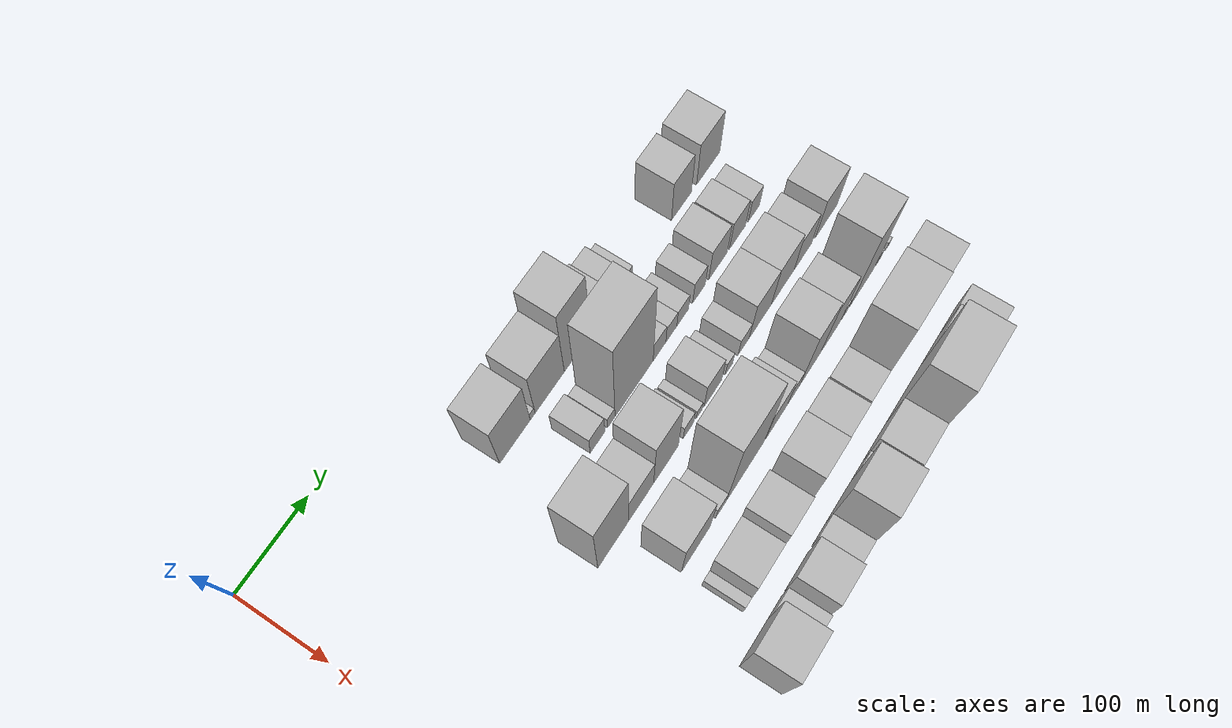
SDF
<sdf version="1.6">
 <world name="default">
  <model name="building_29">
   <static>1</static>
   <pose>100.0000 234.9728 0 0.000000 0.000000 0.000000</pose>
   <link name="link">
    <pose>0 0 43.50 0 0 0</pose>
    <collision name="collision"><geometry><box><size>40.0000 46.1821 87.0000</size></box></geometry></collision>
    <visual name="visual">
     <cast_shadows>0</cast_shadows>
     <geometry><box><size>40.0000 46.1821 87.0000</size></box></geometry>
     <material>
      <script>
       <uri>model://HANNAS_wall/materials/scripts</uri>
       <uri>model://HANNAS_wall/materials/textures</uri>
       <name>vrc/HANNAS_wall</name>
      </script>
     </material>
    </visual>
   </link>
  </model>
  <model name="building_30">
   <static>1</static>
   <pose>100.0000 261.7786 0 0.000000 0.000000 0.000000</pose>
   <link name="link">
    <pose>0 0 7.50 0 0 0</pose>
    <collision name="collision"><geometry><box><size>40.0000 7.4294 15.0000</size></box></geometry></collision>
    <visual name="visual">
     <cast_shadows>0</cast_shadows>
     <geometry><box><size>40.0000 7.4294 15.0000</size></box></geometry>
     <material>
      <script>
       <uri>model://HANNAS_wall/materials/scripts</uri>
       <uri>model://HANNAS_wall/materials/textures</uri>
       <name>vrc/HANNAS_wall</name>
      </script>
     </material>
    </visual>
   </link>
  </model>
  <model name="building_31">
   <static>1</static>
   <pose>100.0000 288.1224 0 0.000000 0.000000 0.000000</pose>
   <link name="link">
    <pose>0 0 45.00 0 0 0</pose>
    <collision name="collision"><geometry><box><size>40.0000 45.2583 90.0000</size></box></geometry></collision>
    <visual name="visual">
     <cast_shadows>0</cast_shadows>
     <geometry><box><size>40.0000 45.2583 90.0000</size></box></geometry>
     <material>
      <script>
       <uri>model://HANNAS_wall/materials/scripts</uri>
       <uri>model://HANNAS_wall/materials/textures</uri>
       <name>vrc/HANNAS_wall</name>
      </script>
     </material>
    </visual>
   </link>
  </model>
  <model name="building_32">
   <static>1</static>
   <pose>100.0000 331.3956 0 0.000000 0.000000 0.000000</pose>
   <link name="link">
    <pose>0 0 64.50 0 0 0</pose>
    <collision name="collision"><geometry><box><size>40.0000 41.2880 129.0000</size></box></geometry></collision>
    <visual name="visual">
     <cast_shadows>0</cast_shadows>
     <geometry><box><size>40.0000 41.2880 129.0000</size></box></geometry>
     <material>
      <script>
       <uri>model://HANNAS_wall/materials/scripts</uri>
       <uri>model://HANNAS_wall/materials/textures</uri>
       <name>vrc/HANNAS_wall</name>
      </script>
     </material>
    </visual>
   </link>
  </model>
  <model name="building_33">
   <static>1</static>
   <pose>100.0000 366.7102 0 0.000000 0.000000 0.000000</pose>
   <link name="link">
    <pose>0 0 25.50 0 0 0</pose>
    <collision name="collision"><geometry><box><size>40.0000 29.3411 51.0000</size></box></geometry></collision>
    <visual name="visual">
     <cast_shadows>0</cast_shadows>
     <geometry><box><size>40.0000 29.3411 51.0000</size></box></geometry>
     <material>
      <script>
       <uri>model://HANNAS_wall/materials/scripts</uri>
       <uri>model://HANNAS_wall/materials/textures</uri>
       <name>vrc/HANNAS_wall</name>
      </script>
     </material>
    </visual>
   </link>
  </model>
  <model name="building_34">
   <static>1</static>
   <pose>100.0000 393.6811 0 0.000000 0.000000 0.000000</pose>
   <link name="link">
    <pose>0 0 21.00 0 0 0</pose>
    <collision name="collision"><geometry><box><size>40.0000 24.6008 42.0000</size></box></geometry></collision>
    <visual name="visual">
     <cast_shadows>0</cast_shadows>
     <geometry><box><size>40.0000 24.6008 42.0000</size></box></geometry>
     <material>
      <script>
       <uri>model://HANNAS_wall/materials/scripts</uri>
       <uri>model://HANNAS_wall/materials/textures</uri>
       <name>vrc/HANNAS_wall</name>
      </script>
     </material>
    </visual>
   </link>
  </model>
  <model name="building_35">
   <static>1</static>
   <pose>100.0000 416.5657 0 0.000000 0.000000 0.000000</pose>
   <link name="link">
    <pose>0 0 10.50 0 0 0</pose>
    <collision name="collision"><geometry><box><size>40.0000 9.1682 21.0000</size></box></geometry></collision>
    <visual name="visual">
     <cast_shadows>0</cast_shadows>
     <geometry><box><size>40.0000 9.1682 21.0000</size></box></geometry>
     <material>
      <script>
       <uri>model://HANNAS_wall/materials/scripts</uri>
       <uri>model://HANNAS_wall/materials/textures</uri>
       <name>vrc/HANNAS_wall</name>
      </script>
     </material>
    </visual>
   </link>
  </model>
  <model name="building_36">
   <static>1</static>
   <pose>100.0000 503.9159 0 0.000000 0.000000 0.000000</pose>
   <link name="link">
    <pose>0 0 34.50 0 0 0</pose>
    <collision name="collision"><geometry><box><size>40.0000 34.5107 69.0000</size></box></geometry></collision>
    <visual name="visual">
     <cast_shadows>0</cast_shadows>
     <geometry><box><size>40.0000 34.5107 69.0000</size></box></geometry>
     <material>
      <script>
       <uri>model://HANNAS_wall/materials/scripts</uri>
       <uri>model://HANNAS_wall/materials/textures</uri>
       <name>vrc/HANNAS_wall</name>
      </script>
     </material>
    </visual>
   </link>
  </model>
  <model name="building_37">
   <static>1</static>
   <pose>100.0000 550.7534 0 0.000000 0.000000 0.000000</pose>
   <link name="link">
    <pose>0 0 36.00 0 0 0</pose>
    <collision name="collision"><geometry><box><size>40.0000 41.1644 72.0000</size></box></geometry></collision>
    <visual name="visual">
     <cast_shadows>0</cast_shadows>
     <geometry><box><size>40.0000 41.1644 72.0000</size></box></geometry>
     <material>
      <script>
       <uri>model://HANNAS_wall/materials/scripts</uri>
       <uri>model://HANNAS_wall/materials/textures</uri>
       <name>vrc/HANNAS_wall</name>
      </script>
     </material>
    </visual>
   </link>
  </model>
  <model name="building_73">
   <static>1</static>
   <pose>160.0000 273.0921 0 0.000000 0.000000 0.000000</pose>
   <link name="link">
    <pose>0 0 19.50 0 0 0</pose>
    <collision name="collision"><geometry><box><size>40.0000 22.8986 39.0000</size></box></geometry></collision>
    <visual name="visual">
     <cast_shadows>0</cast_shadows>
     <geometry><box><size>40.0000 22.8986 39.0000</size></box></geometry>
     <material>
      <script>
       <uri>model://HANNAS_wall/materials/scripts</uri>
       <uri>model://HANNAS_wall/materials/textures</uri>
       <name>vrc/HANNAS_wall</name>
      </script>
     </material>
    </visual>
   </link>
  </model>
  <model name="building_74">
   <static>1</static>
   <pose>160.0000 294.5092 0 0.000000 0.000000 0.000000</pose>
   <link name="link">
    <pose>0 0 12.00 0 0 0</pose>
    <collision name="collision"><geometry><box><size>40.0000 11.9355 24.0000</size></box></geometry></collision>
    <visual name="visual">
     <cast_shadows>0</cast_shadows>
     <geometry><box><size>40.0000 11.9355 24.0000</size></box></geometry>
     <material>
      <script>
       <uri>model://HANNAS_wall/materials/scripts</uri>
       <uri>model://HANNAS_wall/materials/textures</uri>
       <name>vrc/HANNAS_wall</name>
      </script>
     </material>
    </visual>
   </link>
  </model>
  <model name="building_75">
   <static>1</static>
   <pose>160.0000 331.0993 0 0.000000 0.000000 0.000000</pose>
   <link name="link">
    <pose>0 0 82.50 0 0 0</pose>
    <collision name="collision"><geometry><box><size>40.0000 61.2446 165.0000</size></box></geometry></collision>
    <visual name="visual">
     <cast_shadows>0</cast_shadows>
     <geometry><box><size>40.0000 61.2446 165.0000</size></box></geometry>
     <material>
      <script>
       <uri>model://HANNAS_wall/materials/scripts</uri>
       <uri>model://HANNAS_wall/materials/textures</uri>
       <name>vrc/HANNAS_wall</name>
      </script>
     </material>
    </visual>
   </link>
  </model>
  <model name="building_76">
   <static>1</static>
   <pose>160.0000 372.1858 0 0.000000 0.000000 0.000000</pose>
   <link name="link">
    <pose>0 0 19.50 0 0 0</pose>
    <collision name="collision"><geometry><box><size>40.0000 20.9284 39.0000</size></box></geometry></collision>
    <visual name="visual">
     <cast_shadows>0</cast_shadows>
     <geometry><box><size>40.0000 20.9284 39.0000</size></box></geometry>
     <material>
      <script>
       <uri>model://HANNAS_wall/materials/scripts</uri>
       <uri>model://HANNAS_wall/materials/textures</uri>
       <name>vrc/HANNAS_wall</name>
      </script>
     </material>
    </visual>
   </link>
  </model>
  <model name="building_77">
   <static>1</static>
   <pose>160.0000 391.7372 0 0.000000 0.000000 0.000000</pose>
   <link name="link">
    <pose>0 0 16.50 0 0 0</pose>
    <collision name="collision"><geometry><box><size>40.0000 18.1744 33.0000</size></box></geometry></collision>
    <visual name="visual">
     <cast_shadows>0</cast_shadows>
     <geometry><box><size>40.0000 18.1744 33.0000</size></box></geometry>
     <material>
      <script>
       <uri>model://HANNAS_wall/materials/scripts</uri>
       <uri>model://HANNAS_wall/materials/textures</uri>
       <name>vrc/HANNAS_wall</name>
      </script>
     </material>
    </visual>
   </link>
  </model>
  <model name="building_78">
   <static>1</static>
   <pose>160.0000 410.5744 0 0.000000 0.000000 0.000000</pose>
   <link name="link">
    <pose>0 0 16.50 0 0 0</pose>
    <collision name="collision"><geometry><box><size>40.0000 19.5000 33.0000</size></box></geometry></collision>
    <visual name="visual">
     <cast_shadows>0</cast_shadows>
     <geometry><box><size>40.0000 19.5000 33.0000</size></box></geometry>
     <material>
      <script>
       <uri>model://HANNAS_wall/materials/scripts</uri>
       <uri>model://HANNAS_wall/materials/textures</uri>
       <name>vrc/HANNAS_wall</name>
      </script>
     </material>
    </visual>
   </link>
  </model>
  <model name="building_79">
   <static>1</static>
   <pose>160.0000 438.0609 0 0.000000 0.000000 0.000000</pose>
   <link name="link">
    <pose>0 0 21.00 0 0 0</pose>
    <collision name="collision"><geometry><box><size>40.0000 21.4730 42.0000</size></box></geometry></collision>
    <visual name="visual">
     <cast_shadows>0</cast_shadows>
     <geometry><box><size>40.0000 21.4730 42.0000</size></box></geometry>
     <material>
      <script>
       <uri>model://HANNAS_wall/materials/scripts</uri>
       <uri>model://HANNAS_wall/materials/textures</uri>
       <name>vrc/HANNAS_wall</name>
      </script>
     </material>
    </visual>
   </link>
  </model>
  <model name="building_80">
   <static>1</static>
   <pose>160.0000 470.7768 0 0.000000 0.000000 0.000000</pose>
   <link name="link">
    <pose>0 0 28.50 0 0 0</pose>
    <collision name="collision"><geometry><box><size>40.0000 31.9588 57.0000</size></box></geometry></collision>
    <visual name="visual">
     <cast_shadows>0</cast_shadows>
     <geometry><box><size>40.0000 31.9588 57.0000</size></box></geometry>
     <material>
      <script>
       <uri>model://HANNAS_wall/materials/scripts</uri>
       <uri>model://HANNAS_wall/materials/textures</uri>
       <name>vrc/HANNAS_wall</name>
      </script>
     </material>
    </visual>
   </link>
  </model>
  <model name="building_81">
   <static>1</static>
   <pose>160.0000 504.7751 0 0.000000 0.000000 0.000000</pose>
   <link name="link">
    <pose>0 0 25.50 0 0 0</pose>
    <collision name="collision"><geometry><box><size>40.0000 28.0379 51.0000</size></box></geometry></collision>
    <visual name="visual">
     <cast_shadows>0</cast_shadows>
     <geometry><box><size>40.0000 28.0379 51.0000</size></box></geometry>
     <material>
      <script>
       <uri>model://HANNAS_wall/materials/scripts</uri>
       <uri>model://HANNAS_wall/materials/textures</uri>
       <name>vrc/HANNAS_wall</name>
      </script>
     </material>
    </visual>
   </link>
  </model>
  <model name="building_82">
   <static>1</static>
   <pose>160.0000 533.8484 0 0.000000 0.000000 0.000000</pose>
   <link name="link">
    <pose>0 0 19.50 0 0 0</pose>
    <collision name="collision"><geometry><box><size>40.0000 20.1086 39.0000</size></box></geometry></collision>
    <visual name="visual">
     <cast_shadows>0</cast_shadows>
     <geometry><box><size>40.0000 20.1086 39.0000</size></box></geometry>
     <material>
      <script>
       <uri>model://HANNAS_wall/materials/scripts</uri>
       <uri>model://HANNAS_wall/materials/textures</uri>
       <name>vrc/HANNAS_wall</name>
      </script>
     </material>
    </visual>
   </link>
  </model>
  <model name="building_124">
   <static>1</static>
   <pose>220.0000 206.2853 0 0.000000 0.000000 0.000000</pose>
   <link name="link">
    <pose>0 0 69.00 0 0 0</pose>
    <collision name="collision"><geometry><box><size>40.0000 46.5118 138.0000</size></box></geometry></collision>
    <visual name="visual">
     <cast_shadows>0</cast_shadows>
     <geometry><box><size>40.0000 46.5118 138.0000</size></box></geometry>
     <material>
      <script>
       <uri>model://HANNAS_wall/materials/scripts</uri>
       <uri>model://HANNAS_wall/materials/textures</uri>
       <name>vrc/HANNAS_wall</name>
      </script>
     </material>
    </visual>
   </link>
  </model>
  <model name="building_125">
   <static>1</static>
   <pose>220.0000 249.1465 0 0.000000 0.000000 0.000000</pose>
   <link name="link">
    <pose>0 0 33.00 0 0 0</pose>
    <collision name="collision"><geometry><box><size>40.0000 39.2106 66.0000</size></box></geometry></collision>
    <visual name="visual">
     <cast_shadows>0</cast_shadows>
     <geometry><box><size>40.0000 39.2106 66.0000</size></box></geometry>
     <material>
      <script>
       <uri>model://HANNAS_wall/materials/scripts</uri>
       <uri>model://HANNAS_wall/materials/textures</uri>
       <name>vrc/HANNAS_wall</name>
      </script>
     </material>
    </visual>
   </link>
  </model>
  <model name="building_126">
   <static>1</static>
   <pose>220.0000 288.4522 0 0.000000 0.000000 0.000000</pose>
   <link name="link">
    <pose>0 0 54.00 0 0 0</pose>
    <collision name="collision"><geometry><box><size>40.0000 39.4006 108.0000</size></box></geometry></collision>
    <visual name="visual">
     <cast_shadows>0</cast_shadows>
     <geometry><box><size>40.0000 39.4006 108.0000</size></box></geometry>
     <material>
      <script>
       <uri>model://HANNAS_wall/materials/scripts</uri>
       <uri>model://HANNAS_wall/materials/textures</uri>
       <name>vrc/HANNAS_wall</name>
      </script>
     </material>
    </visual>
   </link>
  </model>
  <model name="building_127">
   <static>1</static>
   <pose>220.0000 324.6620 0 0.000000 0.000000 0.000000</pose>
   <link name="link">
    <pose>0 0 15.00 0 0 0</pose>
    <collision name="collision"><geometry><box><size>40.0000 17.0190 30.0000</size></box></geometry></collision>
    <visual name="visual">
     <cast_shadows>0</cast_shadows>
     <geometry><box><size>40.0000 17.0190 30.0000</size></box></geometry>
     <material>
      <script>
       <uri>model://HANNAS_wall/materials/scripts</uri>
       <uri>model://HANNAS_wall/materials/textures</uri>
       <name>vrc/HANNAS_wall</name>
      </script>
     </material>
    </visual>
   </link>
  </model>
  <model name="building_128">
   <static>1</static>
   <pose>220.0000 342.0829 0 0.000000 0.000000 0.000000</pose>
   <link name="link">
    <pose>0 0 10.50 0 0 0</pose>
    <collision name="collision"><geometry><box><size>40.0000 9.8229 21.0000</size></box></geometry></collision>
    <visual name="visual">
     <cast_shadows>0</cast_shadows>
     <geometry><box><size>40.0000 9.8229 21.0000</size></box></geometry>
     <material>
      <script>
       <uri>model://HANNAS_wall/materials/scripts</uri>
       <uri>model://HANNAS_wall/materials/textures</uri>
       <name>vrc/HANNAS_wall</name>
      </script>
     </material>
    </visual>
   </link>
  </model>
  <model name="building_129">
   <static>1</static>
   <pose>220.0000 364.6297 0 0.000000 0.000000 0.000000</pose>
   <link name="link">
    <pose>0 0 27.00 0 0 0</pose>
    <collision name="collision"><geometry><box><size>40.0000 29.2705 54.0000</size></box></geometry></collision>
    <visual name="visual">
     <cast_shadows>0</cast_shadows>
     <geometry><box><size>40.0000 29.2705 54.0000</size></box></geometry>
     <material>
      <script>
       <uri>model://HANNAS_wall/materials/scripts</uri>
       <uri>model://HANNAS_wall/materials/textures</uri>
       <name>vrc/HANNAS_wall</name>
      </script>
     </material>
    </visual>
   </link>
  </model>
  <model name="building_130">
   <static>1</static>
   <pose>220.0000 391.5597 0 0.000000 0.000000 0.000000</pose>
   <link name="link">
    <pose>0 0 13.50 0 0 0</pose>
    <collision name="collision"><geometry><box><size>40.0000 12.5895 27.0000</size></box></geometry></collision>
    <visual name="visual">
     <cast_shadows>0</cast_shadows>
     <geometry><box><size>40.0000 12.5895 27.0000</size></box></geometry>
     <material>
      <script>
       <uri>model://HANNAS_wall/materials/scripts</uri>
       <uri>model://HANNAS_wall/materials/textures</uri>
       <name>vrc/HANNAS_wall</name>
      </script>
     </material>
    </visual>
   </link>
  </model>
  <model name="building_131">
   <static>1</static>
   <pose>220.0000 416.3502 0 0.000000 0.000000 0.000000</pose>
   <link name="link">
    <pose>0 0 18.00 0 0 0</pose>
    <collision name="collision"><geometry><box><size>40.0000 18.9917 36.0000</size></box></geometry></collision>
    <visual name="visual">
     <cast_shadows>0</cast_shadows>
     <geometry><box><size>40.0000 18.9917 36.0000</size></box></geometry>
     <material>
      <script>
       <uri>model://HANNAS_wall/materials/scripts</uri>
       <uri>model://HANNAS_wall/materials/textures</uri>
       <name>vrc/HANNAS_wall</name>
      </script>
     </material>
    </visual>
   </link>
  </model>
  <model name="building_132">
   <static>1</static>
   <pose>220.0000 445.2105 0 0.000000 0.000000 0.000000</pose>
   <link name="link">
    <pose>0 0 37.50 0 0 0</pose>
    <collision name="collision"><geometry><box><size>40.0000 38.7288 75.0000</size></box></geometry></collision>
    <visual name="visual">
     <cast_shadows>0</cast_shadows>
     <geometry><box><size>40.0000 38.7288 75.0000</size></box></geometry>
     <material>
      <script>
       <uri>model://HANNAS_wall/materials/scripts</uri>
       <uri>model://HANNAS_wall/materials/textures</uri>
       <name>vrc/HANNAS_wall</name>
      </script>
     </material>
    </visual>
   </link>
  </model>
  <model name="building_133">
   <static>1</static>
   <pose>220.0000 484.4405 0 0.000000 0.000000 0.000000</pose>
   <link name="link">
    <pose>0 0 37.50 0 0 0</pose>
    <collision name="collision"><geometry><box><size>40.0000 39.7312 75.0000</size></box></geometry></collision>
    <visual name="visual">
     <cast_shadows>0</cast_shadows>
     <geometry><box><size>40.0000 39.7312 75.0000</size></box></geometry>
     <material>
      <script>
       <uri>model://HANNAS_wall/materials/scripts</uri>
       <uri>model://HANNAS_wall/materials/textures</uri>
       <name>vrc/HANNAS_wall</name>
      </script>
     </material>
    </visual>
   </link>
  </model>
  <model name="building_134">
   <static>1</static>
   <pose>220.0000 520.1458 0 0.000000 0.000000 0.000000</pose>
   <link name="link">
    <pose>0 0 30.00 0 0 0</pose>
    <collision name="collision"><geometry><box><size>40.0000 31.6795 60.0000</size></box></geometry></collision>
    <visual name="visual">
     <cast_shadows>0</cast_shadows>
     <geometry><box><size>40.0000 31.6795 60.0000</size></box></geometry>
     <material>
      <script>
       <uri>model://HANNAS_wall/materials/scripts</uri>
       <uri>model://HANNAS_wall/materials/textures</uri>
       <name>vrc/HANNAS_wall</name>
      </script>
     </material>
    </visual>
   </link>
  </model>
  <model name="building_135">
   <static>1</static>
   <pose>220.0000 563.0685 0 0.000000 0.000000 0.000000</pose>
   <link name="link">
    <pose>0 0 36.00 0 0 0</pose>
    <collision name="collision"><geometry><box><size>40.0000 40.1659 72.0000</size></box></geometry></collision>
    <visual name="visual">
     <cast_shadows>0</cast_shadows>
     <geometry><box><size>40.0000 40.1659 72.0000</size></box></geometry>
     <material>
      <script>
       <uri>model://HANNAS_wall/materials/scripts</uri>
       <uri>model://HANNAS_wall/materials/textures</uri>
       <name>vrc/HANNAS_wall</name>
      </script>
     </material>
    </visual>
   </link>
  </model>
  <model name="building_182">
   <static>1</static>
   <pose>280.0000 240.3598 0 0.000000 0.000000 0.000000</pose>
   <link name="link">
    <pose>0 0 45.00 0 0 0</pose>
    <collision name="collision"><geometry><box><size>40.0000 45.0780 90.0000</size></box></geometry></collision>
    <visual name="visual">
     <cast_shadows>0</cast_shadows>
     <geometry><box><size>40.0000 45.0780 90.0000</size></box></geometry>
     <material>
      <script>
       <uri>model://HANNAS_wall/materials/scripts</uri>
       <uri>model://HANNAS_wall/materials/textures</uri>
       <name>vrc/HANNAS_wall</name>
      </script>
     </material>
    </visual>
   </link>
  </model>
  <model name="building_183">
   <static>1</static>
   <pose>280.0000 280.4661 0 0.000000 0.000000 0.000000</pose>
   <link name="link">
    <pose>0 0 15.00 0 0 0</pose>
    <collision name="collision"><geometry><box><size>40.0000 17.1345 30.0000</size></box></geometry></collision>
    <visual name="visual">
     <cast_shadows>0</cast_shadows>
     <geometry><box><size>40.0000 17.1345 30.0000</size></box></geometry>
     <material>
      <script>
       <uri>model://HANNAS_wall/materials/scripts</uri>
       <uri>model://HANNAS_wall/materials/textures</uri>
       <name>vrc/HANNAS_wall</name>
      </script>
     </material>
    </visual>
   </link>
  </model>
  <model name="building_184">
   <static>1</static>
   <pose>280.0000 320.0629 0 0.000000 0.000000 0.000000</pose>
   <link name="link">
    <pose>0 0 81.00 0 0 0</pose>
    <collision name="collision"><geometry><box><size>40.0000 62.0590 162.0000</size></box></geometry></collision>
    <visual name="visual">
     <cast_shadows>0</cast_shadows>
     <geometry><box><size>40.0000 62.0590 162.0000</size></box></geometry>
     <material>
      <script>
       <uri>model://HANNAS_wall/materials/scripts</uri>
       <uri>model://HANNAS_wall/materials/textures</uri>
       <name>vrc/HANNAS_wall</name>
      </script>
     </material>
    </visual>
   </link>
  </model>
  <model name="building_185">
   <static>1</static>
   <pose>280.0000 372.3899 0 0.000000 0.000000 0.000000</pose>
   <link name="link">
    <pose>0 0 33.00 0 0 0</pose>
    <collision name="collision"><geometry><box><size>40.0000 36.5950 66.0000</size></box></geometry></collision>
    <visual name="visual">
     <cast_shadows>0</cast_shadows>
     <geometry><box><size>40.0000 36.5950 66.0000</size></box></geometry>
     <material>
      <script>
       <uri>model://HANNAS_wall/materials/scripts</uri>
       <uri>model://HANNAS_wall/materials/textures</uri>
       <name>vrc/HANNAS_wall</name>
      </script>
     </material>
    </visual>
   </link>
  </model>
  <model name="building_186">
   <static>1</static>
   <pose>280.0000 401.1941 0 0.000000 0.000000 0.000000</pose>
   <link name="link">
    <pose>0 0 19.50 0 0 0</pose>
    <collision name="collision"><geometry><box><size>40.0000 21.0133 39.0000</size></box></geometry></collision>
    <visual name="visual">
     <cast_shadows>0</cast_shadows>
     <geometry><box><size>40.0000 21.0133 39.0000</size></box></geometry>
     <material>
      <script>
       <uri>model://HANNAS_wall/materials/scripts</uri>
       <uri>model://HANNAS_wall/materials/textures</uri>
       <name>vrc/HANNAS_wall</name>
      </script>
     </material>
    </visual>
   </link>
  </model>
  <model name="building_187">
   <static>1</static>
   <pose>280.0000 430.1676 0 0.000000 0.000000 0.000000</pose>
   <link name="link">
    <pose>0 0 58.50 0 0 0</pose>
    <collision name="collision"><geometry><box><size>40.0000 36.9338 117.0000</size></box></geometry></collision>
    <visual name="visual">
     <cast_shadows>0</cast_shadows>
     <geometry><box><size>40.0000 36.9338 117.0000</size></box></geometry>
     <material>
      <script>
       <uri>model://HANNAS_wall/materials/scripts</uri>
       <uri>model://HANNAS_wall/materials/textures</uri>
       <name>vrc/HANNAS_wall</name>
      </script>
     </material>
    </visual>
   </link>
  </model>
  <model name="building_188">
   <static>1</static>
   <pose>280.0000 465.9350 0 0.000000 0.000000 0.000000</pose>
   <link name="link">
    <pose>0 0 51.00 0 0 0</pose>
    <collision name="collision"><geometry><box><size>40.0000 34.6009 102.0000</size></box></geometry></collision>
    <visual name="visual">
     <cast_shadows>0</cast_shadows>
     <geometry><box><size>40.0000 34.6009 102.0000</size></box></geometry>
     <material>
      <script>
       <uri>model://HANNAS_wall/materials/scripts</uri>
       <uri>model://HANNAS_wall/materials/textures</uri>
       <name>vrc/HANNAS_wall</name>
      </script>
     </material>
    </visual>
   </link>
  </model>
  <model name="building_189">
   <static>1</static>
   <pose>280.0000 491.4516 0 0.000000 0.000000 0.000000</pose>
   <link name="link">
    <pose>0 0 12.00 0 0 0</pose>
    <collision name="collision"><geometry><box><size>40.0000 10.4324 24.0000</size></box></geometry></collision>
    <visual name="visual">
     <cast_shadows>0</cast_shadows>
     <geometry><box><size>40.0000 10.4324 24.0000</size></box></geometry>
     <material>
      <script>
       <uri>model://HANNAS_wall/materials/scripts</uri>
       <uri>model://HANNAS_wall/materials/textures</uri>
       <name>vrc/HANNAS_wall</name>
      </script>
     </material>
    </visual>
   </link>
  </model>
  <model name="building_190">
   <static>1</static>
   <pose>280.0000 523.0411 0 0.000000 0.000000 0.000000</pose>
   <link name="link">
    <pose>0 0 70.50 0 0 0</pose>
    <collision name="collision"><geometry><box><size>40.0000 42.7465 141.0000</size></box></geometry></collision>
    <visual name="visual">
     <cast_shadows>0</cast_shadows>
     <geometry><box><size>40.0000 42.7465 141.0000</size></box></geometry>
     <material>
      <script>
       <uri>model://HANNAS_wall/materials/scripts</uri>
       <uri>model://HANNAS_wall/materials/textures</uri>
       <name>vrc/HANNAS_wall</name>
      </script>
     </material>
    </visual>
   </link>
  </model>
  <model name="building_191">
   <static>1</static>
   <pose>280.0000 553.9787 0 0.000000 0.000000 0.000000</pose>
   <link name="link">
    <pose>0 0 10.50 0 0 0</pose>
    <collision name="collision"><geometry><box><size>40.0000 9.1287 21.0000</size></box></geometry></collision>
    <visual name="visual">
     <cast_shadows>0</cast_shadows>
     <geometry><box><size>40.0000 9.1287 21.0000</size></box></geometry>
     <material>
      <script>
       <uri>model://HANNAS_wall/materials/scripts</uri>
       <uri>model://HANNAS_wall/materials/textures</uri>
       <name>vrc/HANNAS_wall</name>
      </script>
     </material>
    </visual>
   </link>
  </model>
  <model name="building_192">
   <static>1</static>
   <pose>280.0000 571.0862 0 0.000000 0.000000 0.000000</pose>
   <link name="link">
    <pose>0 0 7.50 0 0 0</pose>
    <collision name="collision"><geometry><box><size>40.0000 7.0862 15.0000</size></box></geometry></collision>
    <visual name="visual">
     <cast_shadows>0</cast_shadows>
     <geometry><box><size>40.0000 7.0862 15.0000</size></box></geometry>
     <material>
      <script>
       <uri>model://HANNAS_wall/materials/scripts</uri>
       <uri>model://HANNAS_wall/materials/textures</uri>
       <name>vrc/HANNAS_wall</name>
      </script>
     </material>
    </visual>
   </link>
  </model>
  <model name="building_236">
   <static>1</static>
   <pose>340.0000 223.0380 0 0.000000 0.000000 0.000000</pose>
   <link name="link">
    <pose>0 0 12.00 0 0 0</pose>
    <collision name="collision"><geometry><box><size>40.0000 10.0795 24.0000</size></box></geometry></collision>
    <visual name="visual">
     <cast_shadows>0</cast_shadows>
     <geometry><box><size>40.0000 10.0795 24.0000</size></box></geometry>
     <material>
      <script>
       <uri>model://HANNAS_wall/materials/scripts</uri>
       <uri>model://HANNAS_wall/materials/textures</uri>
       <name>vrc/HANNAS_wall</name>
      </script>
     </material>
    </visual>
   </link>
  </model>
  <model name="building_237">
   <static>1</static>
   <pose>340.0000 248.9902 0 0.000000 0.000000 0.000000</pose>
   <link name="link">
    <pose>0 0 36.00 0 0 0</pose>
    <collision name="collision"><geometry><box><size>40.0000 41.8249 72.0000</size></box></geometry></collision>
    <visual name="visual">
     <cast_shadows>0</cast_shadows>
     <geometry><box><size>40.0000 41.8249 72.0000</size></box></geometry>
     <material>
      <script>
       <uri>model://HANNAS_wall/materials/scripts</uri>
       <uri>model://HANNAS_wall/materials/textures</uri>
       <name>vrc/HANNAS_wall</name>
      </script>
     </material>
    </visual>
   </link>
  </model>
  <model name="building_238">
   <static>1</static>
   <pose>340.0000 287.5645 0 0.000000 0.000000 0.000000</pose>
   <link name="link">
    <pose>0 0 51.00 0 0 0</pose>
    <collision name="collision"><geometry><box><size>40.0000 35.3238 102.0000</size></box></geometry></collision>
    <visual name="visual">
     <cast_shadows>0</cast_shadows>
     <geometry><box><size>40.0000 35.3238 102.0000</size></box></geometry>
     <material>
      <script>
       <uri>model://HANNAS_wall/materials/scripts</uri>
       <uri>model://HANNAS_wall/materials/textures</uri>
       <name>vrc/HANNAS_wall</name>
      </script>
     </material>
    </visual>
   </link>
  </model>
  <model name="building_239">
   <static>1</static>
   <pose>340.0000 317.8531 0 0.000000 0.000000 0.000000</pose>
   <link name="link">
    <pose>0 0 10.50 0 0 0</pose>
    <collision name="collision"><geometry><box><size>40.0000 9.2534 21.0000</size></box></geometry></collision>
    <visual name="visual">
     <cast_shadows>0</cast_shadows>
     <geometry><box><size>40.0000 9.2534 21.0000</size></box></geometry>
     <material>
      <script>
       <uri>model://HANNAS_wall/materials/scripts</uri>
       <uri>model://HANNAS_wall/materials/textures</uri>
       <name>vrc/HANNAS_wall</name>
      </script>
     </material>
    </visual>
   </link>
  </model>
  <model name="building_240">
   <static>1</static>
   <pose>340.0000 341.9362 0 0.000000 0.000000 0.000000</pose>
   <link name="link">
    <pose>0 0 51.00 0 0 0</pose>
    <collision name="collision"><geometry><box><size>40.0000 38.9127 102.0000</size></box></geometry></collision>
    <visual name="visual">
     <cast_shadows>0</cast_shadows>
     <geometry><box><size>40.0000 38.9127 102.0000</size></box></geometry>
     <material>
      <script>
       <uri>model://HANNAS_wall/materials/scripts</uri>
       <uri>model://HANNAS_wall/materials/textures</uri>
       <name>vrc/HANNAS_wall</name>
      </script>
     </material>
    </visual>
   </link>
  </model>
  <model name="building_241">
   <static>1</static>
   <pose>340.0000 382.8675 0 0.000000 0.000000 0.000000</pose>
   <link name="link">
    <pose>0 0 37.50 0 0 0</pose>
    <collision name="collision"><geometry><box><size>40.0000 42.9500 75.0000</size></box></geometry></collision>
    <visual name="visual">
     <cast_shadows>0</cast_shadows>
     <geometry><box><size>40.0000 42.9500 75.0000</size></box></geometry>
     <material>
      <script>
       <uri>model://HANNAS_wall/materials/scripts</uri>
       <uri>model://HANNAS_wall/materials/textures</uri>
       <name>vrc/HANNAS_wall</name>
      </script>
     </material>
    </visual>
   </link>
  </model>
  <model name="building_242">
   <static>1</static>
   <pose>340.0000 408.4314 0 0.000000 0.000000 0.000000</pose>
   <link name="link">
    <pose>0 0 9.00 0 0 0</pose>
    <collision name="collision"><geometry><box><size>40.0000 8.1777 18.0000</size></box></geometry></collision>
    <visual name="visual">
     <cast_shadows>0</cast_shadows>
     <geometry><box><size>40.0000 8.1777 18.0000</size></box></geometry>
     <material>
      <script>
       <uri>model://HANNAS_wall/materials/scripts</uri>
       <uri>model://HANNAS_wall/materials/textures</uri>
       <name>vrc/HANNAS_wall</name>
      </script>
     </material>
    </visual>
   </link>
  </model>
  <model name="building_243">
   <static>1</static>
   <pose>340.0000 428.6488 0 0.000000 0.000000 0.000000</pose>
   <link name="link">
    <pose>0 0 28.50 0 0 0</pose>
    <collision name="collision"><geometry><box><size>40.0000 32.2570 57.0000</size></box></geometry></collision>
    <visual name="visual">
     <cast_shadows>0</cast_shadows>
     <geometry><box><size>40.0000 32.2570 57.0000</size></box></geometry>
     <material>
      <script>
       <uri>model://HANNAS_wall/materials/scripts</uri>
       <uri>model://HANNAS_wall/materials/textures</uri>
       <name>vrc/HANNAS_wall</name>
      </script>
     </material>
    </visual>
   </link>
  </model>
  <model name="building_244">
   <static>1</static>
   <pose>340.0000 473.2196 0 0.000000 0.000000 0.000000</pose>
   <link name="link">
    <pose>0 0 75.00 0 0 0</pose>
    <collision name="collision"><geometry><box><size>40.0000 56.8848 150.0000</size></box></geometry></collision>
    <visual name="visual">
     <cast_shadows>0</cast_shadows>
     <geometry><box><size>40.0000 56.8848 150.0000</size></box></geometry>
     <material>
      <script>
       <uri>model://HANNAS_wall/materials/scripts</uri>
       <uri>model://HANNAS_wall/materials/textures</uri>
       <name>vrc/HANNAS_wall</name>
      </script>
     </material>
    </visual>
   </link>
  </model>
  <model name="building_245">
   <static>1</static>
   <pose>340.0000 530.9770 0 0.000000 0.000000 0.000000</pose>
   <link name="link">
    <pose>0 0 57.00 0 0 0</pose>
    <collision name="collision"><geometry><box><size>40.0000 38.6300 114.0000</size></box></geometry></collision>
    <visual name="visual">
     <cast_shadows>0</cast_shadows>
     <geometry><box><size>40.0000 38.6300 114.0000</size></box></geometry>
     <material>
      <script>
       <uri>model://HANNAS_wall/materials/scripts</uri>
       <uri>model://HANNAS_wall/materials/textures</uri>
       <name>vrc/HANNAS_wall</name>
      </script>
     </material>
    </visual>
   </link>
  </model>
  <model name="building_288">
   <static>1</static>
   <pose>400.0000 201.2446 0 0.000000 0.000000 0.000000</pose>
   <link name="link">
    <pose>0 0 58.50 0 0 0</pose>
    <collision name="collision"><geometry><box><size>40.0000 44.2090 117.0000</size></box></geometry></collision>
    <visual name="visual">
     <cast_shadows>0</cast_shadows>
     <geometry><box><size>40.0000 44.2090 117.0000</size></box></geometry>
     <material>
      <script>
       <uri>model://HANNAS_wall/materials/scripts</uri>
       <uri>model://HANNAS_wall/materials/textures</uri>
       <name>vrc/HANNAS_wall</name>
      </script>
     </material>
    </visual>
   </link>
  </model>
  <model name="building_289">
   <static>1</static>
   <pose>400.0000 235.2473 0 0.000000 0.000000 0.000000</pose>
   <link name="link">
    <pose>0 0 22.50 0 0 0</pose>
    <collision name="collision"><geometry><box><size>40.0000 23.7964 45.0000</size></box></geometry></collision>
    <visual name="visual">
     <cast_shadows>0</cast_shadows>
     <geometry><box><size>40.0000 23.7964 45.0000</size></box></geometry>
     <material>
      <script>
       <uri>model://HANNAS_wall/materials/scripts</uri>
       <uri>model://HANNAS_wall/materials/textures</uri>
       <name>vrc/HANNAS_wall</name>
      </script>
     </material>
    </visual>
   </link>
  </model>
  <model name="building_290">
   <static>1</static>
   <pose>400.0000 269.9634 0 0.000000 0.000000 0.000000</pose>
   <link name="link">
    <pose>0 0 37.50 0 0 0</pose>
    <collision name="collision"><geometry><box><size>40.0000 37.6359 75.0000</size></box></geometry></collision>
    <visual name="visual">
     <cast_shadows>0</cast_shadows>
     <geometry><box><size>40.0000 37.6359 75.0000</size></box></geometry>
     <material>
      <script>
       <uri>model://HANNAS_wall/materials/scripts</uri>
       <uri>model://HANNAS_wall/materials/textures</uri>
       <name>vrc/HANNAS_wall</name>
      </script>
     </material>
    </visual>
   </link>
  </model>
  <model name="building_291">
   <static>1</static>
   <pose>400.0000 307.1107 0 0.000000 0.000000 0.000000</pose>
   <link name="link">
    <pose>0 0 21.00 0 0 0</pose>
    <collision name="collision"><geometry><box><size>40.0000 22.6586 42.0000</size></box></geometry></collision>
    <visual name="visual">
     <cast_shadows>0</cast_shadows>
     <geometry><box><size>40.0000 22.6586 42.0000</size></box></geometry>
     <material>
      <script>
       <uri>model://HANNAS_wall/materials/scripts</uri>
       <uri>model://HANNAS_wall/materials/textures</uri>
       <name>vrc/HANNAS_wall</name>
      </script>
     </material>
    </visual>
   </link>
  </model>
  <model name="building_292">
   <static>1</static>
   <pose>400.0000 340.1547 0 0.000000 0.000000 0.000000</pose>
   <link name="link">
    <pose>0 0 64.50 0 0 0</pose>
    <collision name="collision"><geometry><box><size>40.0000 43.4295 129.0000</size></box></geometry></collision>
    <visual name="visual">
     <cast_shadows>0</cast_shadows>
     <geometry><box><size>40.0000 43.4295 129.0000</size></box></geometry>
     <material>
      <script>
       <uri>model://HANNAS_wall/materials/scripts</uri>
       <uri>model://HANNAS_wall/materials/textures</uri>
       <name>vrc/HANNAS_wall</name>
      </script>
     </material>
    </visual>
   </link>
  </model>
  <model name="building_293">
   <static>1</static>
   <pose>400.0000 372.0511 0 0.000000 0.000000 0.000000</pose>
   <link name="link">
    <pose>0 0 19.50 0 0 0</pose>
    <collision name="collision"><geometry><box><size>40.0000 20.3633 39.0000</size></box></geometry></collision>
    <visual name="visual">
     <cast_shadows>0</cast_shadows>
     <geometry><box><size>40.0000 20.3633 39.0000</size></box></geometry>
     <material>
      <script>
       <uri>model://HANNAS_wall/materials/scripts</uri>
       <uri>model://HANNAS_wall/materials/textures</uri>
       <name>vrc/HANNAS_wall</name>
      </script>
     </material>
    </visual>
   </link>
  </model>
  <model name="building_294">
   <static>1</static>
   <pose>400.0000 402.7515 0 0.000000 0.000000 0.000000</pose>
   <link name="link">
    <pose>0 0 37.50 0 0 0</pose>
    <collision name="collision"><geometry><box><size>40.0000 41.0374 75.0000</size></box></geometry></collision>
    <visual name="visual">
     <cast_shadows>0</cast_shadows>
     <geometry><box><size>40.0000 41.0374 75.0000</size></box></geometry>
     <material>
      <script>
       <uri>model://HANNAS_wall/materials/scripts</uri>
       <uri>model://HANNAS_wall/materials/textures</uri>
       <name>vrc/HANNAS_wall</name>
      </script>
     </material>
    </visual>
   </link>
  </model>
  <model name="building_295">
   <static>1</static>
   <pose>400.0000 454.3512 0 0.000000 0.000000 0.000000</pose>
   <link name="link">
    <pose>0 0 78.00 0 0 0</pose>
    <collision name="collision"><geometry><box><size>40.0000 62.1620 156.0000</size></box></geometry></collision>
    <visual name="visual">
     <cast_shadows>0</cast_shadows>
     <geometry><box><size>40.0000 62.1620 156.0000</size></box></geometry>
     <material>
      <script>
       <uri>model://HANNAS_wall/materials/scripts</uri>
       <uri>model://HANNAS_wall/materials/textures</uri>
       <name>vrc/HANNAS_wall</name>
      </script>
     </material>
    </visual>
   </link>
  </model>
  <model name="building_296">
   <static>1</static>
   <pose>400.0000 503.6406 0 0.000000 0.000000 0.000000</pose>
   <link name="link">
    <pose>0 0 36.00 0 0 0</pose>
    <collision name="collision"><geometry><box><size>40.0000 36.4167 72.0000</size></box></geometry></collision>
    <visual name="visual">
     <cast_shadows>0</cast_shadows>
     <geometry><box><size>40.0000 36.4167 72.0000</size></box></geometry>
     <material>
      <script>
       <uri>model://HANNAS_wall/materials/scripts</uri>
       <uri>model://HANNAS_wall/materials/textures</uri>
       <name>vrc/HANNAS_wall</name>
      </script>
     </material>
    </visual>
   </link>
  </model>
  <model name="building_297">
   <static>1</static>
   <pose>400.0000 537.3171 0 0.000000 0.000000 0.000000</pose>
   <link name="link">
    <pose>0 0 27.00 0 0 0</pose>
    <collision name="collision"><geometry><box><size>40.0000 30.9364 54.0000</size></box></geometry></collision>
    <visual name="visual">
     <cast_shadows>0</cast_shadows>
     <geometry><box><size>40.0000 30.9364 54.0000</size></box></geometry>
     <material>
      <script>
       <uri>model://HANNAS_wall/materials/scripts</uri>
       <uri>model://HANNAS_wall/materials/textures</uri>
       <name>vrc/HANNAS_wall</name>
      </script>
     </material>
    </visual>
   </link>
  </model>
 </world>
</sdf>
